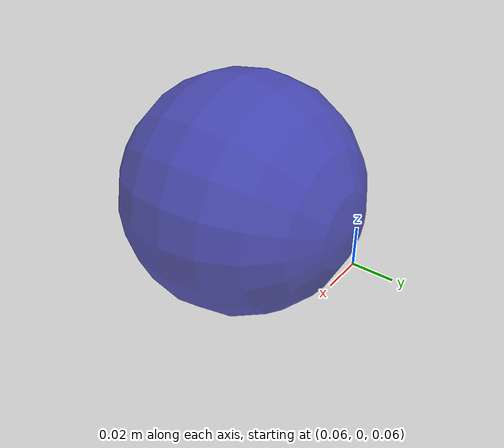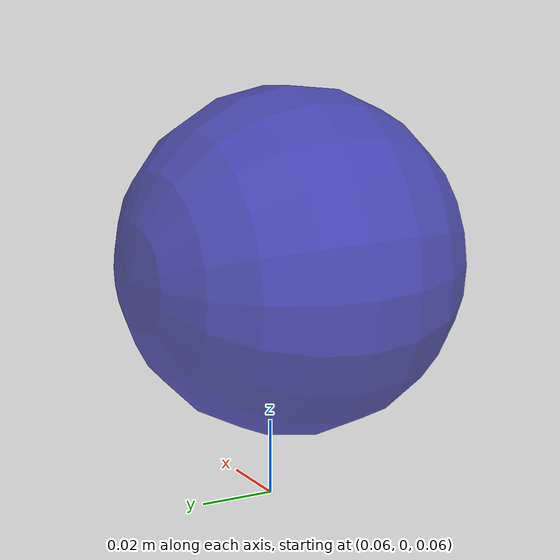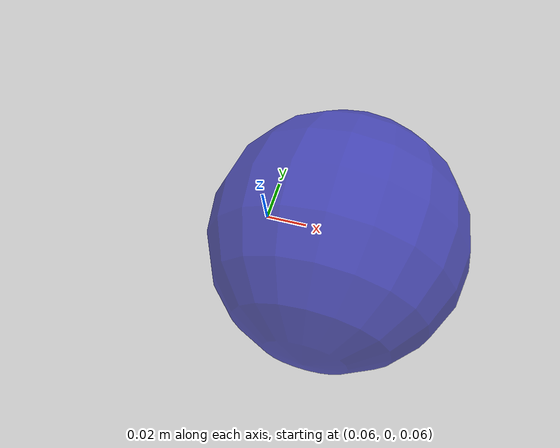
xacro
<?xml version="1.0"?>
<robot xmlns:xacro="http://www.ros.org/wiki/xacro" name="sphere">
    <xacro:property name="PI" value="3.14159265359" />
    <xacro:property name="s_radius" value="0.05" />
    <xacro:property name="opacity" value="0.7" />
    <xacro:property name="obj_x" value="0.105" />
    <xacro:property name="obj_y" value="-0.03" />
    <xacro:property name="obj_z" value="0.11" />
    <!-- Base link -->
    <link name="obj_base">
        <origin xyz="0 0 0"/>
    </link>
    <joint name="base_joint" type="revolute">
        <limit effort="15" lower="-0.47" upper="0.47" velocity="7"/>
        <parent link="obj_base"/>
        <child link="object_link"/>
        <origin xyz="0 0 0"/>
    </joint>
    <!-- object link -->
    <link name="object_link">
        <visual>
            <geometry>
                <sphere radius="${s_radius}"/>
            </geometry>
            <origin rpy="${PI/2} 0 0" xyz="${obj_x} ${obj_y} ${obj_z}"/>
            <material name="blue">
                <color rgba="0.1 0.1 0.7 ${opacity}"/>
            </material>
        </visual>
        <collision>
            <geometry>
                <sphere radius="${s_radius}"/>
            </geometry>
        </collision>
    </link>
</robot>
